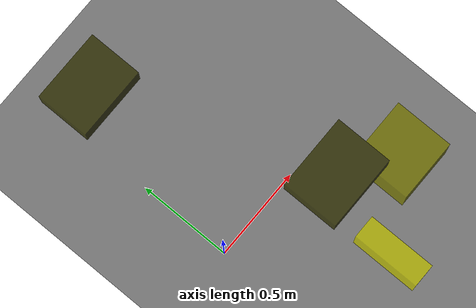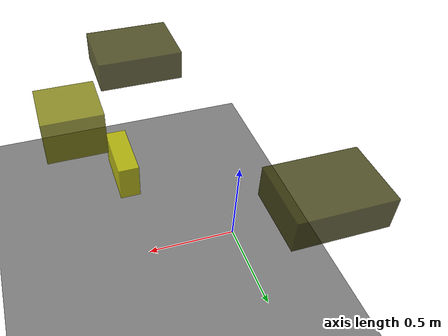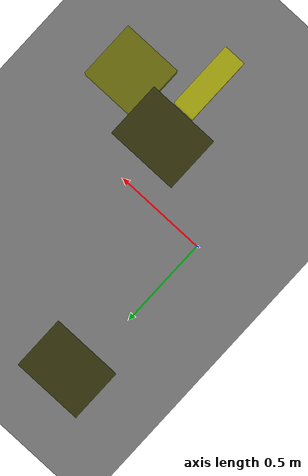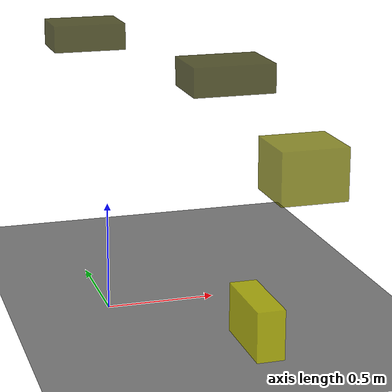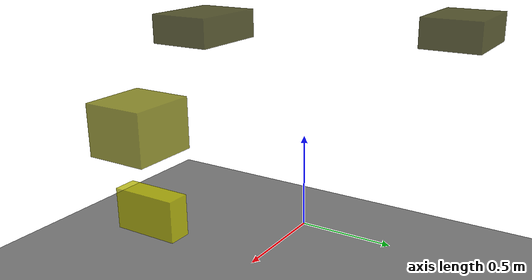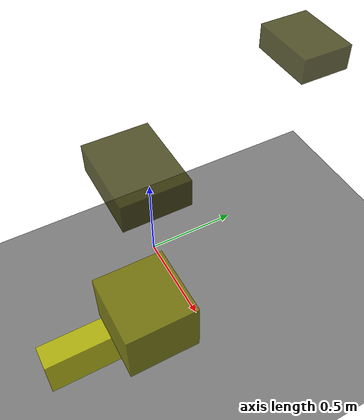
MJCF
<?xml version="1.0"?>
<mujoco model="obstacle_scene">
  <compiler angle="radian" coordinate="local"/>
  <option timestep="0.001" gravity="0 0 -9.81"/>

  <asset>
    <material name="obstacle_mat" rgba="0.8 0.8 0.0 0.8"/>
    <material name="ground_mat" rgba="0.5 0.5 0.5 1"/>
  </asset>

  <worldbody>
    <!-- Ground plane -->
    <geom name="ground" type="plane" size="3 3 0.1" material="ground_mat"/>

    <!-- Obstacles -->
    <body name="obstacle_0" pos="0.475527 -0.249250 1.118602">
      <geom name="obs_0" type="box" size="0.183576 0.140993 0.064435" rgba="0.2 0.2 0.0 0.8"/>
    </body>
    <body name="obstacle_1" pos="0.794741 -0.384357 0.707931">
      <geom name="obs_1" type="box" size="0.155696 0.148768 0.121498" rgba="0.5 0.5 0.0 0.8"/>
    </body>
    <body name="obstacle_2" pos="0.501098 -0.629008 0.123171">
      <geom name="obs_2" type="box" size="0.061562 0.183662 0.112357" rgba="0.8 0.8 0.0 0.8"/>
    </body>
    <body name="obstacle_3" pos="0.085650 0.814058 1.135669">
      <geom name="obs_3" type="box" size="0.177140 0.131256 0.064621" rgba="0.2 0.2 0.0 0.8"/>
    </body>
  </worldbody>
</mujoco>
